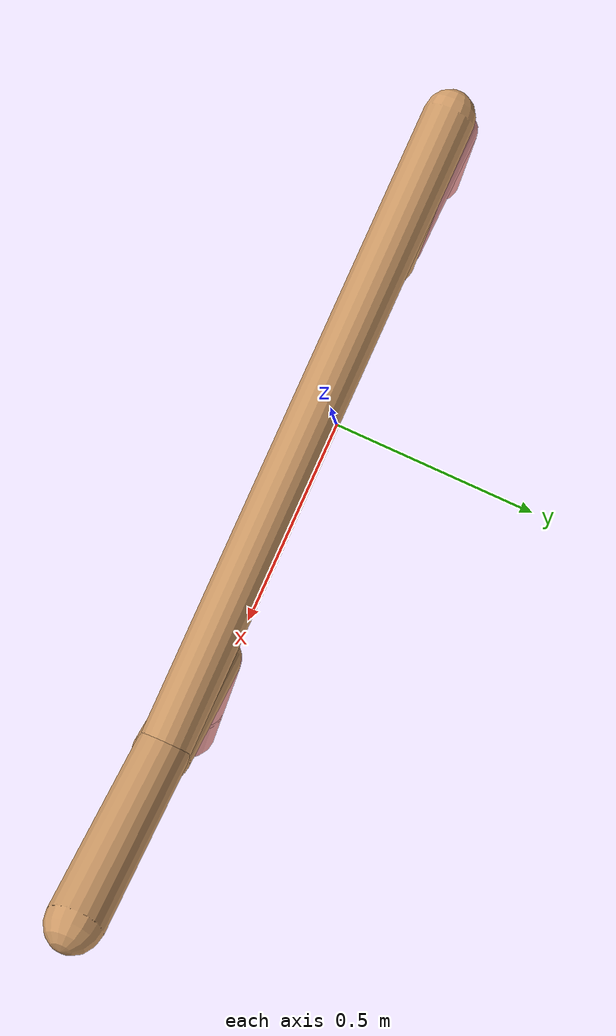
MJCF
<mujoco model="cheetah">
  <compiler angle="radian" coordinate="local" inertiafromgeom="true" settotalmass="14" />
  <default>
    <joint armature=".1" damping=".01" limited="true" solimplimit="0 .8 .03" solreflimit=".02 1" stiffness="8" />
    <geom conaffinity="0" condim="3" contype="1" friction="0.8 .1 .1" rgba="0.8 0.6 .4 1" solimp="0.0 0.8 0.01" solref="0.02 1" />
    <motor ctrllimited="true" ctrlrange="-1 1" />
  </default>
  <size nstack="300000" nuser_geom="1" />
  <option gravity="0 0 -9.81" timestep="0.01" />
  <worldbody>
    <body name="torso" pos="0.0 0.0 0.8274681151876921">
      <joint armature="0" axis="1 0 0" damping="0" limited="false" name="ignorex" pos="0 0 0" stiffness="0" type="slide" />
      <joint armature="0" axis="0 0 1" damping="0" limited="false" name="ignorez" pos="0 0 0" stiffness="0" type="slide" />
      <joint armature="0" axis="0 1 0" damping="0" limited="false" name="ignorey" pos="0 0 0" stiffness="0" type="hinge" />
      <geom fromto="-0.5 0.0 0.0 0.6528736917764635 0.0 0.0" name="torso" size="0.04437307346407873" type="capsule" />
      <geom axisangle="0 1 0 .87" name="head" pos="0.7528736917764635 0.0 0.1" size="0.04598865338810198 0.15" type="capsule" />

      <body name="bthigh" pos="-.5 0 0">
        <joint axis="0 1 0" damping="6" name="bthigh" pos="0 0 0" range="-.52 1.05" stiffness="240" type="hinge" />
        <geom axisangle="0 1 0 -3.8" name="bthigh" pos="0.10955017696338881 0.0 -0.14241523005240544" size="0.03786820904348874 0.1606634548323859" type="capsule" />
        <body name="bshin" pos="0.17910035392677762 0.0 -0.2748304601048109">
          <joint axis="0 1 0" damping="4.5" name="bshin" pos="0 0 0" range="-.785 .785" stiffness="180" type="hinge" />
          <geom axisangle="0 1 0 -2.03" name="bshin" pos="-0.15449291714526034 0.0 -0.07724645857263017" rgba="0.9 0.6 0.6 1" size="0.03786820904348874 0.16620357396453714" type="capsule" />
          <body name="bfoot" pos="-0.3089858342905207 0.0 -0.15449291714526034">
            <joint axis="0 1 0" damping="3" name="bfoot" pos="0 0 0" range="-.4 .785" stiffness="120" type="hinge" />
            <geom axisangle="0 1 0 -.27" name="bfoot" pos="0.03300027038604672 0.0 -0.10670087424821773" rgba="0.9 0.6 0.6 1" size="0.03786820904348874 0.10415423968444328" type="capsule" />
            <inertial mass="10" />
          </body>
        </body>
      </body>
      <body name="fthigh" pos="0.6528736917764635 0.0 0.0">
        <joint axis="0 1 0" damping="4.5" name="fthigh" pos="0 0 0" range="-1.5 0.8" stiffness="180" type="hinge" />
        <geom axisangle="0 1 0 .52" name="fthigh" pos="-0.07285356273494001 0.0 -0.1248918218313257" size="0.04972873410544534 0.13866328006650502" type="capsule" />
        <body name="fshin" pos="-0.14570712546988002 0.0 -0.2497836436626514">
          <joint axis="0 1 0" damping="3" name="fshin" pos="0 0 0" range="-1.2 1.1" stiffness="120" type="hinge" />
          <geom axisangle="0 1 0 -.6" name="fshin" pos="0.06764266526441848 0.0 -0.09365907498150249" rgba="0.9 0.6 0.6 1" size="0.04972873410544534 0.11051359163195136" type="capsule" />
          <body name="ffoot" pos="0.13528533052883696 0.0 -0.18731814996300497">
            <joint axis="0 1 0" damping="1.5" name="ffoot" pos="0 0 0" range="-3.1 -0.3" stiffness="60" type="hinge" />
            <geom axisangle="0 1 0 -.6" name="ffoot" pos="0.04661182194089316 0.0 -0.0725072785747227" rgba="0.9 0.6 0.6 1" size="0.04972873410544534 0.07298067371921317" type="capsule" />
            <inertial mass="10" />
          </body>
        </body>
      </body>
    </body>
  </worldbody>
  <actuator>
    <motor gear="120" joint="bthigh" name="bthigh" />
    <motor gear="90" joint="bshin" name="bshin" />
    <motor gear="60" joint="bfoot" name="bfoot" />
    <motor gear="120" joint="fthigh" name="fthigh" />
    <motor gear="60" joint="fshin" name="fshin" />
    <motor gear="30" joint="ffoot" name="ffoot" />
  </actuator>
</mujoco>
